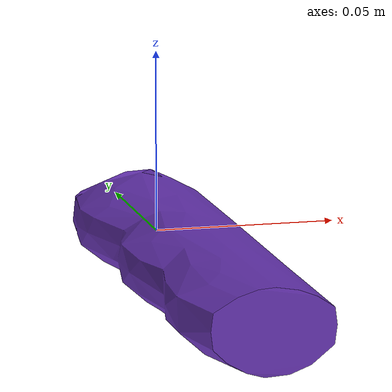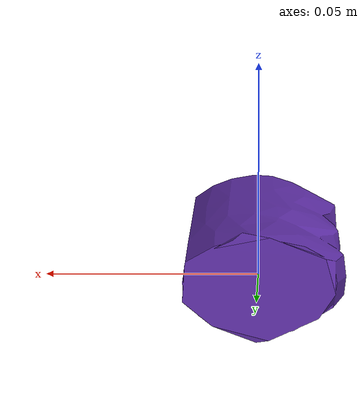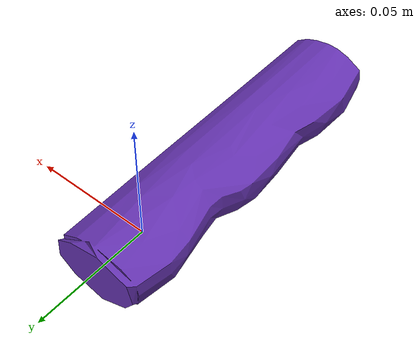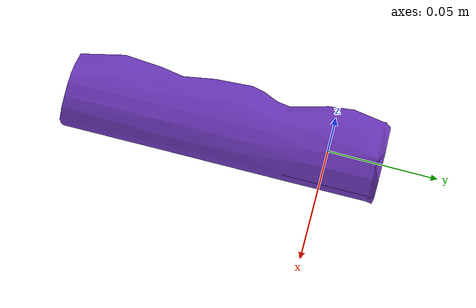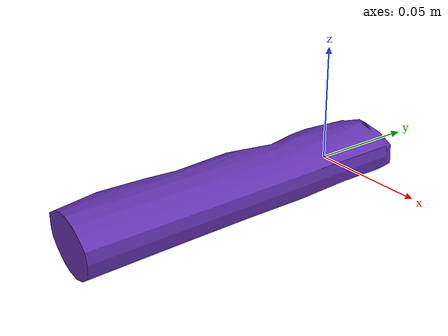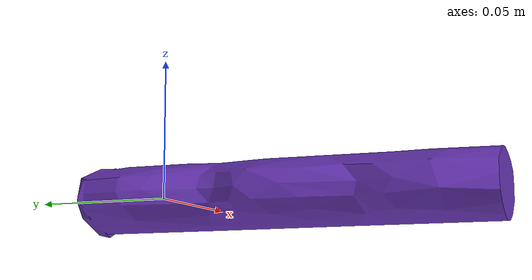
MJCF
<mujoco model="top_watertight_tiny">
  <default>
    <default group="2" type="mesh" contype="0" conaffinity="0">
      <geom group="2" type="mesh" contype="0" conaffinity="0"/>
    </default>
    <default group="3" type="mesh">
      <geom group="3" type="mesh"/>
    </default>
  </default>
  <asset>
    <mesh file="top_watertight_tiny.obj"/>
    <mesh file="top_watertight_tiny_collision_0.obj"/>
    <mesh file="top_watertight_tiny_collision_1.obj"/>
  </asset>
  <worldbody>
    <body name="top_watertight_tiny">
      <freejoint/>
      <geom mesh="top_watertight_tiny" group="2" type="mesh" rgba="0.4 0.2 0.7 1" contype="0" conaffinity="0"/>
      <geom mesh="top_watertight_tiny_collision_0" rgba="0.21369201087381917 0.740563801173343 0.9891043515283297 1" group="3" type="mesh"/>
      <geom mesh="top_watertight_tiny_collision_1" rgba="0.7351590559158792 0.725224313089607 0.14694919974708975 1" group="3" type="mesh"/>
    </body>
  </worldbody>
</mujoco>
